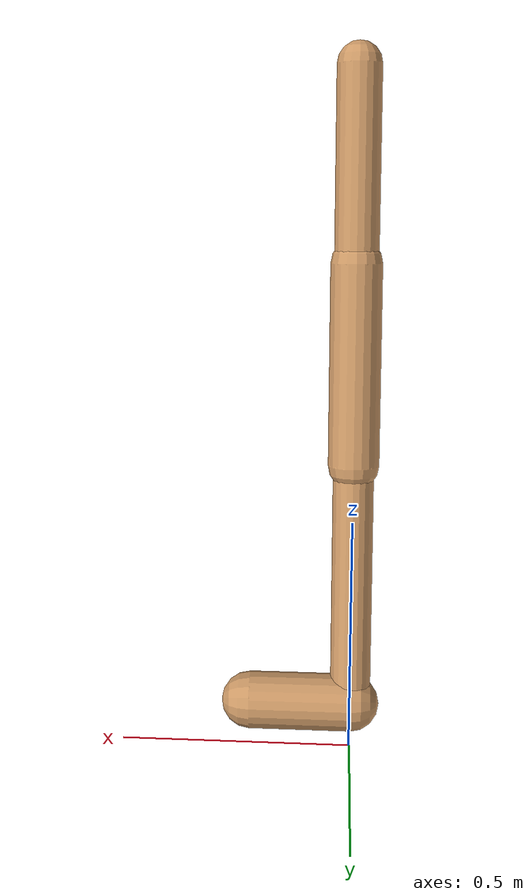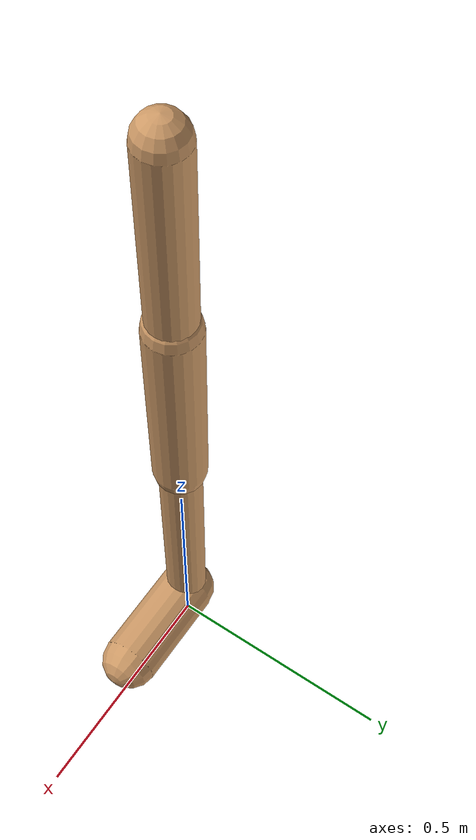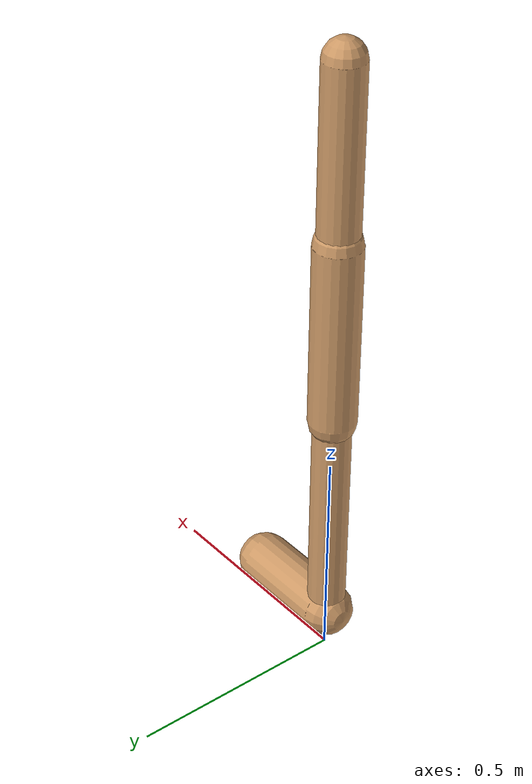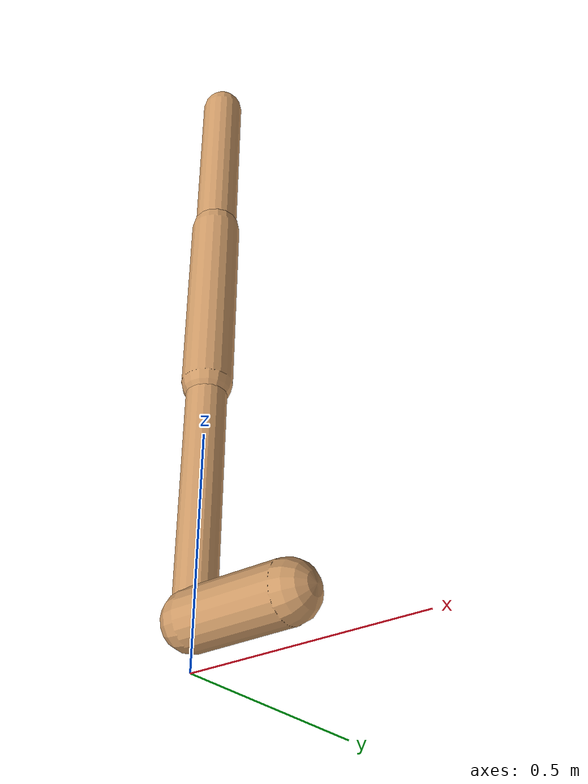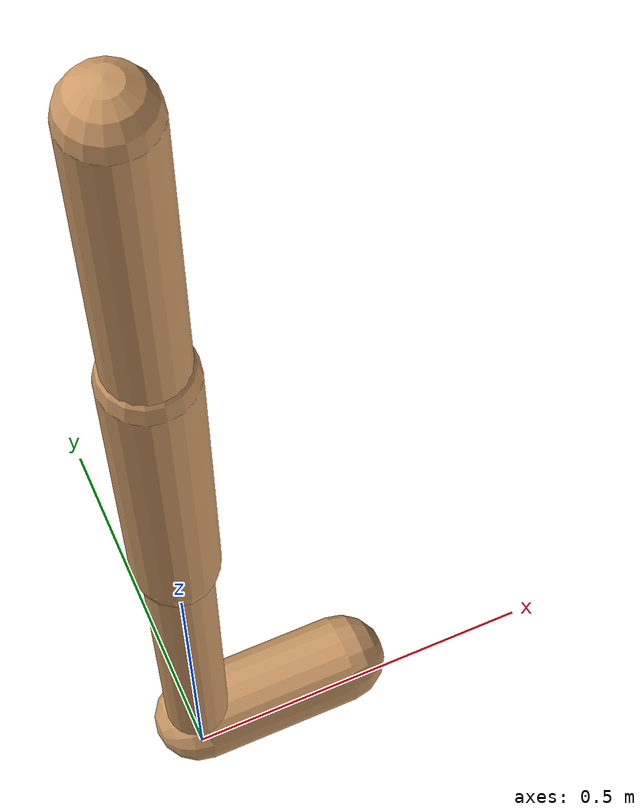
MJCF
<mujoco model="walker2d">
  <compiler angle="degree" coordinate="global" inertiafromgeom="true" />
  <default>
    <joint armature="0.01" damping=".1" limited="true" />
    <geom conaffinity="0" condim="3" contype="1" density="1000" friction="0.8 .1 .1" rgba="0.8 0.6 .4 1" />
  </default>
  <option integrator="RK4" timestep="0.002" />
  <worldbody>

    <body name="torso" pos="0 0 -0.05443079186687442">
      <joint armature="0" axis="1 0 0" damping="0" limited="false" name="ignorex" pos="0 0 0" stiffness="0" type="slide" />
      <joint armature="0" axis="0 0 1" damping="0" limited="false" name="ignorez" pos="0 0 0" ref="1.25" stiffness="0" type="slide" />
      <joint armature="0" axis="0 1 0" damping="0" limited="false" name="ignorey" pos="0 0 0" stiffness="0" type="hinge" />
      <geom fromto="0 0 1.45 0 0 1.05" name="torso_geom" size="0.04624424833665508" type="capsule" />
      <body name="thigh">
        <joint axis="0 -1 0" name="thigh_joint" pos="0 0 1.05" range="-150 0" type="hinge" />
        <geom fromto="0.0 0.0 1.05 0.0 0.0 0.6257830066737826" name="thigh_geom" size="0.053886081678746894" type="capsule" />
        <body name="leg" pos="0.0 0.0 0.025783006673782638">
          <joint axis="0 -1 0" name="leg_joint" pos="0 0 0.6" range="-150 0" type="hinge" />
          <geom fromto="0.0 0.0 0.6 0.0 0.0 0.1286477851930918" name="leg_geom" size="0.04310886534299751" type="capsule" />
          <body name="foot" pos="0.0 0.0 0.0286477851930918">
            <joint axis="0 -1 0" name="foot_joint" pos="0 0 0.1" range="-45 45" type="hinge" />
            <geom fromto="-0.0 0.0 0.1 0.21765428235670706 0.0 0.1" name="foot_geom" size="0.061816572690959255" type="capsule" />
          </body>
        </body>
      </body>

      <body name="thigh_left">
        <joint axis="0 -1 0" name="thigh_left_joint" pos="0 0 1.05" range="-150 0" type="hinge" />
        <geom fromto="0.0 0.0 1.05 0.0 0.0 0.6257830066737826" name="thigh_left_geom" rgba=".7 .3 .6 1" size="0.053886081678746894" type="capsule" />
        <body name="leg_left" pos="0.0 0.0 0.025783006673782638">
          <joint axis="0 -1 0" name="leg_left_joint" pos="0 0 0.6" range="-150 0" type="hinge" />
          <geom fromto="0.0 0.0 0.6 0.0 0.0 0.1286477851930918" name="leg_left_geom" rgba=".7 .3 .6 1" size="0.04310886534299751" type="capsule" />
          <body name="foot_left" pos="0.0 0.0 0.0286477851930918">
            <joint axis="0 -1 0" name="foot_left_joint" pos="0 0 0.1" range="-45 45" type="hinge" />
            <geom fromto="-0.0 0.0 0.1 0.21765428235670706 0.0 0.1" name="foot_left_geom" rgba=".7 .3 .6 1" size="0.061816572690959255" type="capsule" />
          </body>
        </body>
      </body>
    </body>
  </worldbody>
  <actuator>

    <motor ctrllimited="true" ctrlrange="-1.0 1.0" gear="100" joint="thigh_joint" />
    <motor ctrllimited="true" ctrlrange="-1.0 1.0" gear="100" joint="leg_joint" />
    <motor ctrllimited="true" ctrlrange="-1.0 1.0" gear="100" joint="foot_joint" />
    <motor ctrllimited="true" ctrlrange="-1.0 1.0" gear="100" joint="thigh_left_joint" />
    <motor ctrllimited="true" ctrlrange="-1.0 1.0" gear="100" joint="leg_left_joint" />
    <motor ctrllimited="true" ctrlrange="-1.0 1.0" gear="100" joint="foot_left_joint" />

  </actuator>
</mujoco>
